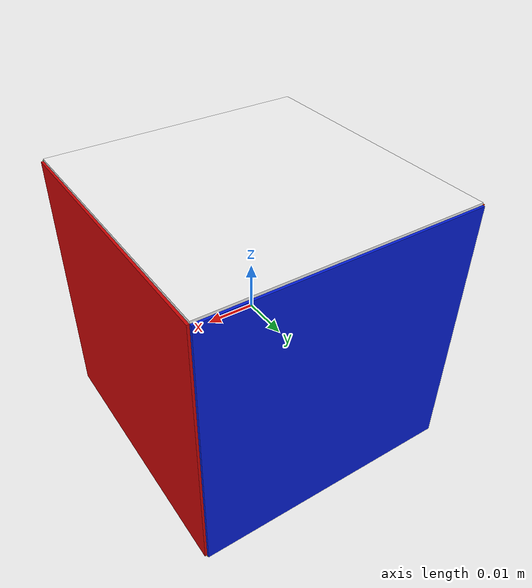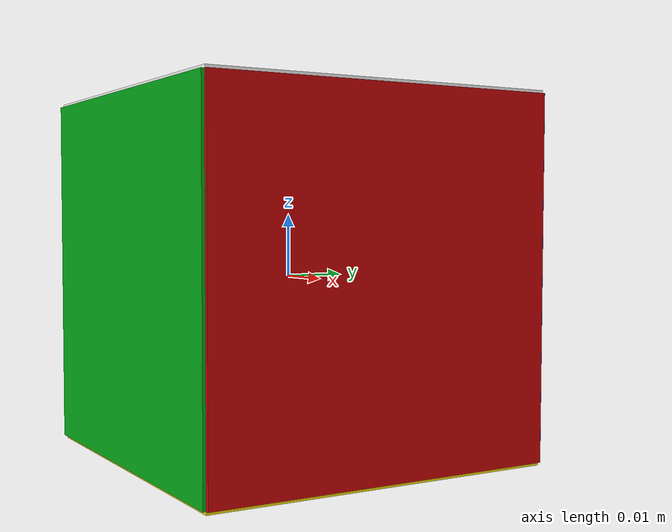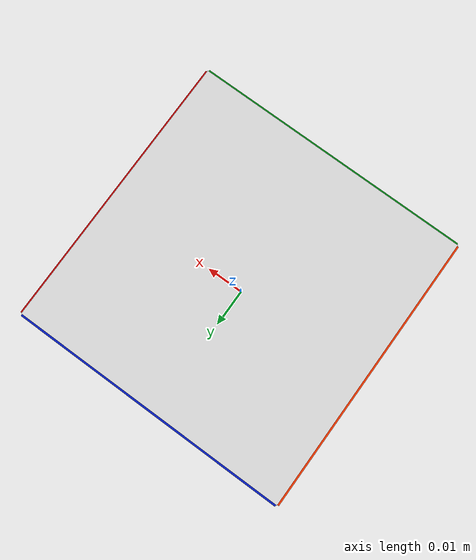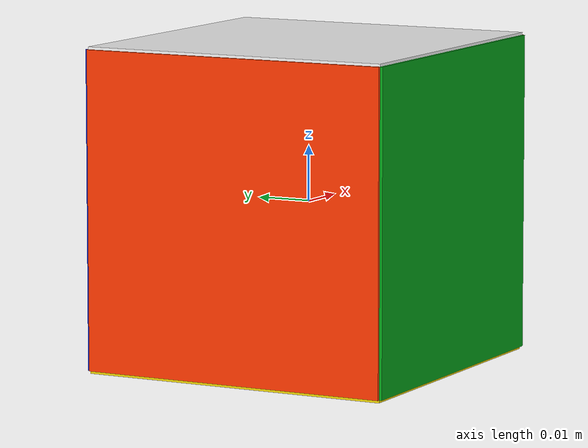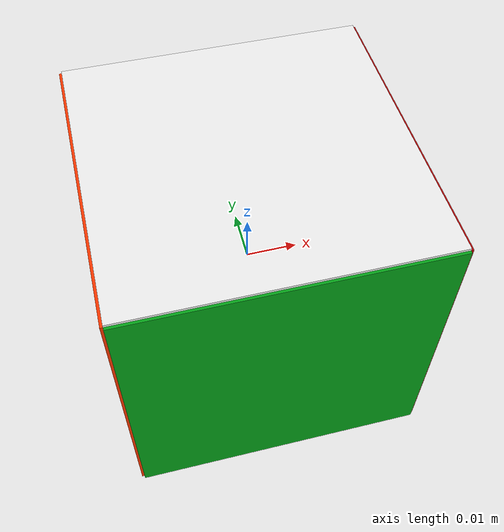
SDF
<?xml version="1.0"?>
<sdf version="1.7">
  <model name="rubiks_dynamic_cube_supported_057">
    <!-- Test-only dynamic copy of the canonical 57 mm, 90 g Rubik model. -->
    <static>false</static>
    <self_collide>false</self_collide>
    <allow_auto_disable>false</allow_auto_disable>
    <link name="cube_link">
      <inertial>
        <mass>0.09</mass>
        <inertia>
          <ixx>4.8735e-05</ixx><ixy>0</ixy><ixz>0</ixz>
          <iyy>4.8735e-05</iyy><iyz>0</iyz><izz>4.8735e-05</izz>
        </inertia>
      </inertial>
      <collision name="cube_collision">
        <geometry><box><size>0.057 0.057 0.057</size></box></geometry>
        <surface>
          <friction><ode><mu>1.0</mu><mu2>1.0</mu2></ode></friction>
          <bounce><restitution_coefficient>0.0</restitution_coefficient></bounce>
          <contact>
            <collide_without_contact>false</collide_without_contact>
            <ode><max_vel>0.001</max_vel><min_depth>0.00001</min_depth></ode>
          </contact>
        </surface>
        <max_contacts>40</max_contacts>
      </collision>
      <visual name="black_body">
        <geometry><box><size>0.057 0.057 0.057</size></box></geometry>
        <material><ambient>0.005 0.005 0.005 1</ambient><diffuse>0.005 0.005 0.005 1</diffuse><specular>0.05 0.05 0.05 1</specular></material>
      </visual>
      <visual name="face_px_red"><pose>0.02875 0 0 0 0 0</pose><geometry><box><size>0.0005 0.057 0.057</size></box></geometry><material><ambient>0.8 0.02 0.02 1</ambient><diffuse>0.8 0.02 0.02 1</diffuse></material></visual>
      <visual name="face_nx_orange"><pose>-0.02875 0 0 0 0 0</pose><geometry><box><size>0.0005 0.057 0.057</size></box></geometry><material><ambient>1 0.22 0 1</ambient><diffuse>1 0.22 0 1</diffuse></material></visual>
      <visual name="face_py_blue"><pose>0 0.02875 0 0 0 0</pose><geometry><box><size>0.057 0.0005 0.057</size></box></geometry><material><ambient>0.02 0.12 0.85 1</ambient><diffuse>0.02 0.12 0.85 1</diffuse></material></visual>
      <visual name="face_ny_green"><pose>0 -0.02875 0 0 0 0</pose><geometry><box><size>0.057 0.0005 0.057</size></box></geometry><material><ambient>0.02 0.65 0.1 1</ambient><diffuse>0.02 0.65 0.1 1</diffuse></material></visual>
      <visual name="face_pz_white"><pose>0 0 0.02875 0 0 0</pose><geometry><box><size>0.057 0.057 0.0005</size></box></geometry><material><ambient>0.95 0.95 0.95 1</ambient><diffuse>0.95 0.95 0.95 1</diffuse></material></visual>
      <visual name="face_nz_yellow"><pose>0 0 -0.02875 0 0 0</pose><geometry><box><size>0.057 0.057 0.0005</size></box></geometry><material><ambient>0.95 0.85 0.02 1</ambient><diffuse>0.95 0.85 0.02 1</diffuse></material></visual>
      <sensor name="cube_contact_sensor" type="contact">
        <always_on>true</always_on>
        <update_rate>500</update_rate>
        <visualize>false</visualize>
        <contact><collision>cube_collision</collision></contact>
        <plugin name="rubiks_dynamic_cube_contact_ros" filename="libgazebo_ros_bumper.so">
          <ros>
            <namespace>/rubiks_dynamic_cube_hold</namespace>
            <argument>bumper_states:=contact_states</argument>
          </ros>
          <frame_name>cube_link</frame_name>
        </plugin>
      </sensor>
    </link>
  </model>
</sdf>
